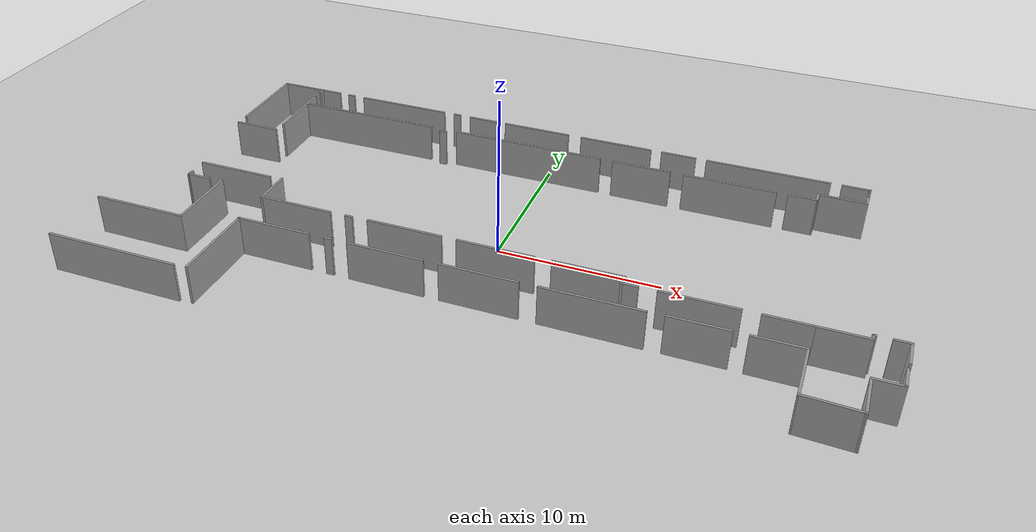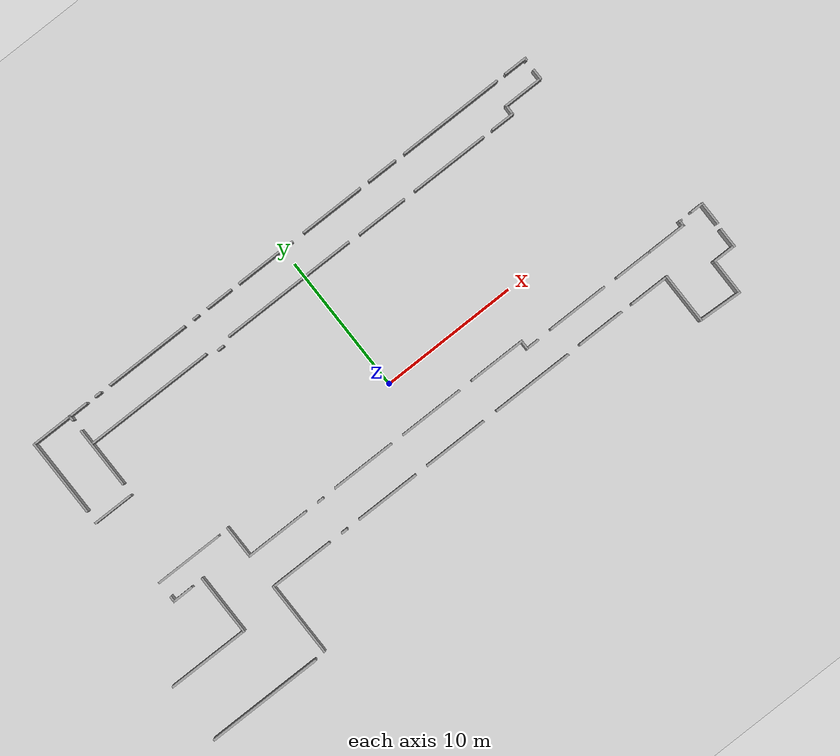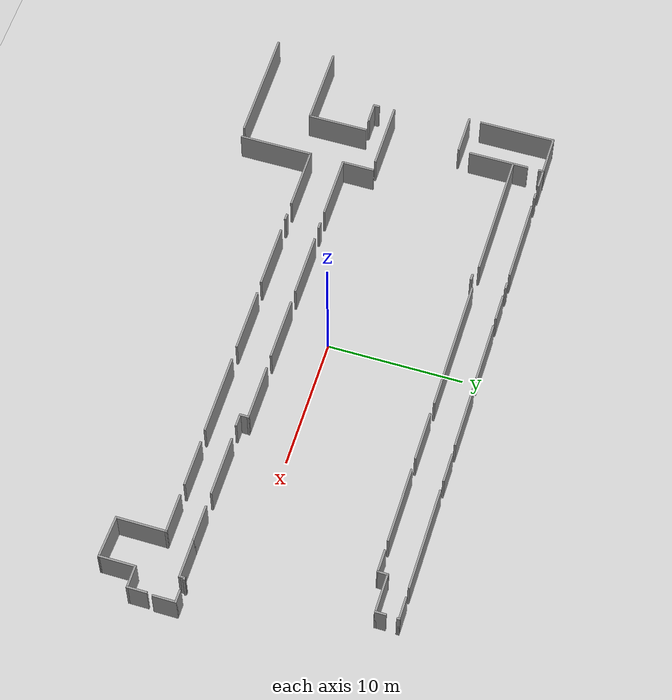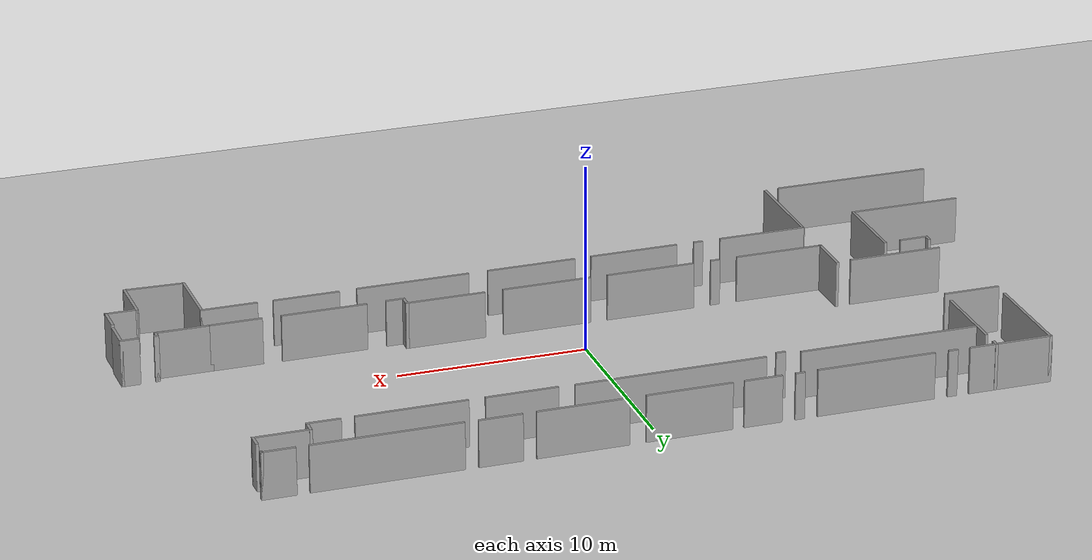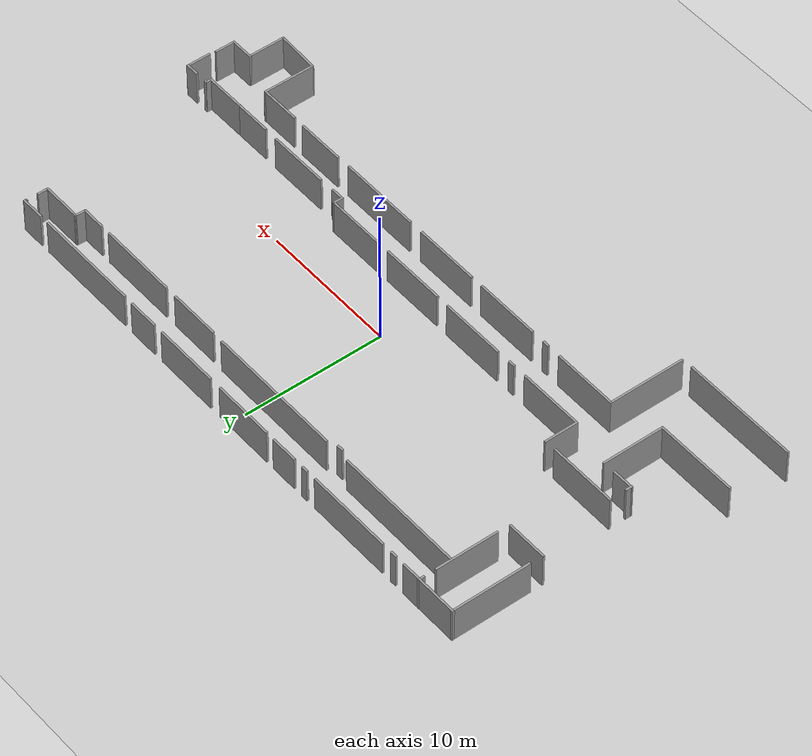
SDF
<sdf version='1.7'>
  <world name='default'>
    <light name='sun' type='directional'>
      <cast_shadows>1</cast_shadows>
      <pose>0 0 10 0 -0 0</pose>
      <diffuse>0.8 0.8 0.8 1</diffuse>
      <specular>0.2 0.2 0.2 1</specular>
      <attenuation>
        <range>1000</range>
        <constant>0.9</constant>
        <linear>0.01</linear>
        <quadratic>0.001</quadratic>
      </attenuation>
      <direction>-0.5 0.1 -0.9</direction>
      <spot>
        <inner_angle>0</inner_angle>
        <outer_angle>0</outer_angle>
        <falloff>0</falloff>
      </spot>
    </light>
    <model name='ground_plane'>
      <static>1</static>
      <link name='link'>
        <collision name='collision'>
          <geometry>
            <plane>
              <normal>0 0 1</normal>
              <size>100 100</size>
            </plane>
          </geometry>
          <surface>
            <friction>
              <ode>
                <mu>100</mu>
                <mu2>50</mu2>
              </ode>
              <torsional>
                <ode/>
              </torsional>
            </friction>
            <contact>
              <ode/>
            </contact>
            <bounce/>
          </surface>
          <max_contacts>10</max_contacts>
        </collision>
        <visual name='visual'>
          <cast_shadows>0</cast_shadows>
          <geometry>
            <plane>
              <normal>0 0 1</normal>
              <size>100 100</size>
            </plane>
          </geometry>
          <material>
            <script>
              <uri>file://media/materials/scripts/gazebo.material</uri>
              <name>Gazebo/Grey</name>
            </script>
          </material>
        </visual>
        <self_collide>0</self_collide>
        <enable_wind>0</enable_wind>
        <kinematic>0</kinematic>
      </link>
    </model>
    <gravity>0 0 -9.8</gravity>
    <magnetic_field>6e-06 2.3e-05 -4.2e-05</magnetic_field>
    <atmosphere type='adiabatic'/>
    <physics type='ode'>
      <max_step_size>0.001</max_step_size>
      <real_time_factor>1</real_time_factor>
      <real_time_update_rate>1000</real_time_update_rate>
    </physics>
    <scene>
      <ambient>0.4 0.4 0.4 1</ambient>
      <background>0.7 0.7 0.7 1</background>
      <shadows>1</shadows>
    </scene>
    <audio>
      <device>default</device>
    </audio>
    <wind/>
    <spherical_coordinates>
      <surface_model>EARTH_WGS84</surface_model>
      <latitude_deg>0</latitude_deg>
      <longitude_deg>0</longitude_deg>
      <elevation>0</elevation>
      <heading_deg>0</heading_deg>
    </spherical_coordinates>

    <include>
      <name>mundo_definitivo</name>
      <uri>model://mundo_Definitivo</uri>
      <pose>0 0 0 0 0 0</pose>
    </include>

    <gui fullscreen='0'>
      <camera name='user_camera'>
        <pose>0 -34 38 0 0.8 1.5708</pose>
        <view_controller>orbit</view_controller>
        <projection_type>perspective</projection_type>
      </camera>
    </gui>
  </world>
</sdf>

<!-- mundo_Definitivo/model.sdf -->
<sdf version='1.7'>
  <model name='mapaV2'>
    <pose>0.752962 -0.165006 0 0 -0 0</pose>
    <link name='Wall_100'>
      <collision name='Wall_100_Collision'>
        <geometry>
          <box>
            <size>0.5 0.15 2.5</size>
          </box>
        </geometry>
        <pose>0 0 1.25 0 -0 0</pose>
      </collision>
      <visual name='Wall_100_Visual'>
        <pose>0 0 1.25 0 -0 0</pose>
        <geometry>
          <box>
            <size>0.5 0.15 2.5</size>
          </box>
        </geometry>
        <material>
          <script>
            <uri>file://media/materials/scripts/gazebo.material</uri>
            <name>Gazebo/Grey</name>
          </script>
          <ambient>1 1 1 1</ambient>
        </material>
        <meta>
          <layer>0</layer>
        </meta>
      </visual>
      <pose>-8.23448 -5.77581 0 0 -0 0</pose>
    </link>
    <link name='Wall_102'>
      <collision name='Wall_102_Collision'>
        <geometry>
          <box>
            <size>4.75 0.15 2.5</size>
          </box>
        </geometry>
        <pose>0 0 1.25 0 -0 0</pose>
      </collision>
      <visual name='Wall_102_Visual'>
        <pose>0 0 1.25 0 -0 0</pose>
        <geometry>
          <box>
            <size>4.75 0.15 2.5</size>
          </box>
        </geometry>
        <material>
          <script>
            <uri>file://media/materials/scripts/gazebo.material</uri>
            <name>Gazebo/Grey</name>
          </script>
          <ambient>1 1 1 1</ambient>
        </material>
        <meta>
          <layer>0</layer>
        </meta>
      </visual>
      <pose>-11.7864 -3.22073 0 0 -0 3.14159</pose>
    </link>
    <link name='Wall_104'>
      <collision name='Wall_104_Collision'>
        <geometry>
          <box>
            <size>2.46963 0.15 2.5</size>
          </box>
        </geometry>
        <pose>0 0 1.25 0 -0 0</pose>
      </collision>
      <visual name='Wall_104_Visual'>
        <pose>0 0 1.25 0 -0 0</pose>
        <geometry>
          <box>
            <size>2.46963 0.15 2.5</size>
          </box>
        </geometry>
        <material>
          <script>
            <uri>file://media/materials/scripts/gazebo.material</uri>
            <name>Gazebo/Grey</name>
          </script>
          <ambient>1 1 1 1</ambient>
        </material>
        <meta>
          <layer>0</layer>
        </meta>
      </visual>
      <pose>-14.1016 -2.06094 0 0 -0 1.5708</pose>
    </link>
    <link name='Wall_106'>
      <collision name='Wall_106_Collision'>
        <geometry>
          <box>
            <size>0.5 0.15 2.5</size>
          </box>
        </geometry>
        <pose>0 0 1.25 0 -0 0</pose>
      </collision>
      <visual name='Wall_106_Visual'>
        <pose>0 0 1.25 0 -0 0</pose>
        <geometry>
          <box>
            <size>0.5 0.15 2.5</size>
          </box>
        </geometry>
        <material>
          <script>
            <uri>file://media/materials/scripts/gazebo.material</uri>
            <name>Gazebo/Grey</name>
          </script>
          <ambient>1 1 1 1</ambient>
        </material>
        <meta>
          <layer>0</layer>
        </meta>
      </visual>
      <pose>-8.21947 -3.22073 0 0 -0 3.14159</pose>
    </link>
    <link name='Wall_108'>
      <collision name='Wall_108_Collision'>
        <geometry>
          <box>
            <size>4.75 0.15 2.5</size>
          </box>
        </geometry>
        <pose>0 0 1.25 0 -0 0</pose>
      </collision>
      <visual name='Wall_108_Visual'>
        <pose>0 0 1.25 0 -0 0</pose>
        <geometry>
          <box>
            <size>4.75 0.15 2.5</size>
          </box>
        </geometry>
        <material>
          <script>
            <uri>file://media/materials/scripts/gazebo.material</uri>
            <name>Gazebo/Grey</name>
          </script>
          <ambient>1 1 1 1</ambient>
        </material>
        <meta>
          <layer>0</layer>
        </meta>
      </visual>
      <pose>-4.64944 -3.19032 0 0 -0 0</pose>
    </link>
    <link name='Wall_110'>
      <collision name='Wall_110_Collision'>
        <geometry>
          <box>
            <size>4.75 0.15 2.5</size>
          </box>
        </geometry>
        <pose>0 0 1.25 0 -0 0</pose>
      </collision>
      <visual name='Wall_110_Visual'>
        <pose>0 0 1.25 0 -0 0</pose>
        <geometry>
          <box>
            <size>4.75 0.15 2.5</size>
          </box>
        </geometry>
        <material>
          <script>
            <uri>file://media/materials/scripts/gazebo.material</uri>
            <name>Gazebo/Grey</name>
          </script>
          <ambient>1 1 1 1</ambient>
        </material>
        <meta>
          <layer>0</layer>
        </meta>
      </visual>
      <pose>-4.66465 -5.77581 0 0 -0 0</pose>
    </link>
    <link name='Wall_112'>
      <collision name='Wall_112_Collision'>
        <geometry>
          <box>
            <size>4.75 0.15 2.5</size>
          </box>
        </geometry>
        <pose>0 0 1.25 0 -0 0</pose>
      </collision>
      <visual name='Wall_112_Visual'>
        <pose>0 0 1.25 0 -0 0</pose>
        <geometry>
          <box>
            <size>4.75 0.15 2.5</size>
          </box>
        </geometry>
        <material>
          <script>
            <uri>file://media/materials/scripts/gazebo.material</uri>
            <name>Gazebo/Grey</name>
          </script>
          <ambient>1 1 1 1</ambient>
        </material>
        <meta>
          <layer>0</layer>
        </meta>
      </visual>
      <pose>0.99301 -3.20553 0 0 -0 0</pose>
    </link>
    <link name='Wall_114'>
      <collision name='Wall_114_Collision'>
        <geometry>
          <box>
            <size>4.75 0.15 2.5</size>
          </box>
        </geometry>
        <pose>0 0 1.25 0 -0 0</pose>
      </collision>
      <visual name='Wall_114_Visual'>
        <pose>0 0 1.25 0 -0 0</pose>
        <geometry>
          <box>
            <size>4.75 0.15 2.5</size>
          </box>
        </geometry>
        <material>
          <script>
            <uri>file://media/materials/scripts/gazebo.material</uri>
            <name>Gazebo/Grey</name>
          </script>
          <ambient>1 1 1 1</ambient>
        </material>
        <meta>
          <layer>0</layer>
        </meta>
      </visual>
      <pose>0.977802 -5.7606 0 0 -0 0</pose>
    </link>
    <link name='Wall_116'>
      <collision name='Wall_116_Collision'>
        <geometry>
          <box>
            <size>4.25 0.15 2.5</size>
          </box>
        </geometry>
        <pose>0 0 1.25 0 -0 0</pose>
      </collision>
      <visual name='Wall_116_Visual'>
        <pose>0 0 1.25 0 -0 0</pose>
        <geometry>
          <box>
            <size>4.25 0.15 2.5</size>
          </box>
        </geometry>
        <material>
          <script>
            <uri>file://media/materials/scripts/gazebo.material</uri>
            <name>Gazebo/Grey</name>
          </script>
          <ambient>1 1 1 1</ambient>
        </material>
        <meta>
          <layer>0</layer>
        </meta>
      </visual>
      <pose>6.4615 -3.19032 0 0 -0 0</pose>
    </link>
    <link name='Wall_117'>
      <collision name='Wall_117_Collision'>
        <geometry>
          <box>
            <size>0.750193 0.15 2.5</size>
          </box>
        </geometry>
        <pose>0 0 1.25 0 -0 0</pose>
      </collision>
      <visual name='Wall_117_Visual'>
        <pose>0 0 1.25 0 -0 0</pose>
        <geometry>
          <box>
            <size>0.750193 0.15 2.5</size>
          </box>
        </geometry>
        <material>
          <script>
            <uri>file://media/materials/scripts/gazebo.material</uri>
            <name>Gazebo/Grey</name>
          </script>
          <ambient>1 1 1 1</ambient>
        </material>
        <meta>
          <layer>0</layer>
        </meta>
      </visual>
      <pose>8.49629 -3.49032 0 0 -0 -1.5708</pose>
    </link>
    <link name='Wall_118'>
      <collision name='Wall_118_Collision'>
        <geometry>
          <box>
            <size>1 0.15 2.5</size>
          </box>
        </geometry>
        <pose>0 0 1.25 0 -0 0</pose>
      </collision>
      <visual name='Wall_118_Visual'>
        <pose>0 0 1.25 0 -0 0</pose>
        <geometry>
          <box>
            <size>1 0.15 2.5</size>
          </box>
        </geometry>
        <material>
          <script>
            <uri>file://media/materials/scripts/gazebo.material</uri>
            <name>Gazebo/Grey</name>
          </script>
          <ambient>1 1 1 1</ambient>
        </material>
        <meta>
          <layer>0</layer>
        </meta>
      </visual>
      <pose>8.9365 -3.79032 0 0 -0 0</pose>
    </link>
    <link name='Wall_120'>
      <collision name='Wall_120_Collision'>
        <geometry>
          <box>
            <size>4.5 0.15 2.5</size>
          </box>
        </geometry>
        <pose>0 0 1.25 0 -0 0</pose>
      </collision>
      <visual name='Wall_120_Visual'>
        <pose>0 0 1.25 0 -0 0</pose>
        <geometry>
          <box>
            <size>4.5 0.15 2.5</size>
          </box>
        </geometry>
        <material>
          <script>
            <uri>file://media/materials/scripts/gazebo.material</uri>
            <name>Gazebo/Grey</name>
          </script>
          <ambient>1 1 1 1</ambient>
        </material>
        <meta>
          <layer>0</layer>
        </meta>
      </visual>
      <pose>12.7004 -3.75304 0 0 -0 0</pose>
    </link>
    <link name='Wall_124'>
      <collision name='Wall_124_Collision'>
        <geometry>
          <box>
            <size>3 0.15 2.5</size>
          </box>
        </geometry>
        <pose>0 0 1.25 0 -0 0</pose>
      </collision>
      <visual name='Wall_124_Visual'>
        <pose>0 0 1.25 0 -0 0</pose>
        <geometry>
          <box>
            <size>3 0.15 2.5</size>
          </box>
        </geometry>
        <material>
          <script>
            <uri>file://media/materials/scripts/gazebo.material</uri>
            <name>Gazebo/Grey</name>
          </script>
          <ambient>1 1 1 1</ambient>
        </material>
        <meta>
          <layer>0</layer>
        </meta>
      </visual>
      <pose>17.1388 -5.74539 0 0 -0 3.14159</pose>
    </link>
    <link name='Wall_126'>
      <collision name='Wall_126_Collision'>
        <geometry>
          <box>
            <size>3.5 0.15 2.5</size>
          </box>
        </geometry>
        <pose>0 0 1.25 0 -0 0</pose>
      </collision>
      <visual name='Wall_126_Visual'>
        <pose>0 0 1.25 0 -0 0</pose>
        <geometry>
          <box>
            <size>3.5 0.15 2.5</size>
          </box>
        </geometry>
        <material>
          <script>
            <uri>file://media/materials/scripts/gazebo.material</uri>
            <name>Gazebo/Grey</name>
          </script>
          <ambient>1 1 1 1</ambient>
        </material>
        <meta>
          <layer>0</layer>
        </meta>
      </visual>
      <pose>13.0768 -5.72041 0 0 -0 0</pose>
    </link>
    <link name='Wall_128'>
      <collision name='Wall_128_Collision'>
        <geometry>
          <box>
            <size>6 0.15 2.5</size>
          </box>
        </geometry>
        <pose>0 0 1.25 0 -0 0</pose>
      </collision>
      <visual name='Wall_128_Visual'>
        <pose>0 0 1.25 0 -0 0</pose>
        <geometry>
          <box>
            <size>6 0.15 2.5</size>
          </box>
        </geometry>
        <material>
          <script>
            <uri>file://media/materials/scripts/gazebo.material</uri>
            <name>Gazebo/Grey</name>
          </script>
          <ambient>1 1 1 1</ambient>
        </material>
        <meta>
          <layer>0</layer>
        </meta>
      </visual>
      <pose>7.38832 -5.75453 0 0 -0 0</pose>
    </link>
    <link name='Wall_130'>
      <collision name='Wall_130_Collision'>
        <geometry>
          <box>
            <size>3.75 0.15 2.5</size>
          </box>
        </geometry>
        <pose>0 0 1.25 0 -0 0</pose>
      </collision>
      <visual name='Wall_130_Visual'>
        <pose>0 0 1.25 0 -0 0</pose>
        <geometry>
          <box>
            <size>3.75 0.15 2.5</size>
          </box>
        </geometry>
        <material>
          <script>
            <uri>file://media/materials/scripts/gazebo.material</uri>
            <name>Gazebo/Grey</name>
          </script>
          <ambient>1 1 1 1</ambient>
        </material>
        <meta>
          <layer>0</layer>
        </meta>
      </visual>
      <pose>18.5523 -7.54539 0 0 -0 -1.5708</pose>
    </link>
    <link name='Wall_136'>
      <collision name='Wall_136_Collision'>
        <geometry>
          <box>
            <size>2.75 0.15 2.5</size>
          </box>
        </geometry>
        <pose>0 0 1.25 0 -0 0</pose>
      </collision>
      <visual name='Wall_136_Visual'>
        <pose>0 0 1.25 0 -0 0</pose>
        <geometry>
          <box>
            <size>2.75 0.15 2.5</size>
          </box>
        </geometry>
        <material>
          <script>
            <uri>file://media/materials/scripts/gazebo.material</uri>
            <name>Gazebo/Grey</name>
          </script>
          <ambient>1 1 1 1</ambient>
        </material>
        <meta>
          <layer>0</layer>
        </meta>
      </visual>
      <pose>17.3064 -3.77961 0 0 -0 0</pose>
    </link>
    <link name='Wall_138'>
      <collision name='Wall_138_Collision'>
        <geometry>
          <box>
            <size>3 0.15 2.5</size>
          </box>
        </geometry>
        <pose>0 0 1.25 0 -0 0</pose>
      </collision>
      <visual name='Wall_138_Visual'>
        <pose>0 0 1.25 0 -0 0</pose>
        <geometry>
          <box>
            <size>3 0.15 2.5</size>
          </box>
        </geometry>
        <material>
          <script>
            <uri>file://media/materials/scripts/gazebo.material</uri>
            <name>Gazebo/Grey</name>
          </script>
          <ambient>1 1 1 1</ambient>
        </material>
        <meta>
          <layer>0</layer>
        </meta>
      </visual>
      <pose>20.0314 -3.77961 0 0 -0 0</pose>
    </link>
    <link name='Wall_139'>
      <collision name='Wall_139_Collision'>
        <geometry>
          <box>
            <size>0.5 0.15 2.5</size>
          </box>
        </geometry>
        <pose>0 0 1.25 0 -0 0</pose>
      </collision>
      <visual name='Wall_139_Visual'>
        <pose>0 0 1.25 0 -0 0</pose>
        <geometry>
          <box>
            <size>0.5 0.15 2.5</size>
          </box>
        </geometry>
        <material>
          <script>
            <uri>file://media/materials/scripts/gazebo.material</uri>
            <name>Gazebo/Grey</name>
          </script>
          <ambient>1 1 1 1</ambient>
        </material>
        <meta>
          <layer>0</layer>
        </meta>
      </visual>
      <pose>21.4564 -3.60461 0 0 -0 1.5708</pose>
    </link>
    <link name='Wall_140'>
      <collision name='Wall_140_Collision'>
        <geometry>
          <box>
            <size>0.25 0.15 2.5</size>
          </box>
        </geometry>
        <pose>0 0 1.25 0 -0 0</pose>
      </collision>
      <visual name='Wall_140_Visual'>
        <pose>0 0 1.25 0 -0 0</pose>
        <geometry>
          <box>
            <size>0.25 0.15 2.5</size>
          </box>
        </geometry>
        <material>
          <script>
            <uri>file://media/materials/scripts/gazebo.material</uri>
            <name>Gazebo/Grey</name>
          </script>
          <ambient>1 1 1 1</ambient>
        </material>
        <meta>
          <layer>0</layer>
        </meta>
      </visual>
      <pose>21.5064 -3.42961 0 0 -0 0</pose>
    </link>
    <link name='Wall_147'>
      <collision name='Wall_147_Collision'>
        <geometry>
          <box>
            <size>1 0.15 2.5</size>
          </box>
        </geometry>
        <pose>0 0 1.25 0 -0 0</pose>
      </collision>
      <visual name='Wall_147_Visual'>
        <pose>0 0 1.25 0 -0 0</pose>
        <geometry>
          <box>
            <size>1 0.15 2.5</size>
          </box>
        </geometry>
        <material>
          <script>
            <uri>file://media/materials/scripts/gazebo.material</uri>
            <name>Gazebo/Grey</name>
          </script>
          <ambient>1 1 1 1</ambient>
        </material>
        <meta>
          <layer>0</layer>
        </meta>
      </visual>
      <pose>22.8895 -3.41702 0 0 -0 0</pose>
    </link>
    <link name='Wall_149'>
      <collision name='Wall_149_Collision'>
        <geometry>
          <box>
            <size>1.75 0.15 2.5</size>
          </box>
        </geometry>
        <pose>0 0 1.25 0 -0 0</pose>
      </collision>
      <visual name='Wall_149_Visual'>
        <pose>0 0 1.25 0 -0 0</pose>
        <geometry>
          <box>
            <size>1.75 0.15 2.5</size>
          </box>
        </geometry>
        <material>
          <script>
            <uri>file://media/materials/scripts/gazebo.material</uri>
            <name>Gazebo/Grey</name>
          </script>
          <ambient>1 1 1 1</ambient>
        </material>
        <meta>
          <layer>0</layer>
        </meta>
      </visual>
      <pose>23.3145 -4.21702 0 0 -0 -1.5708</pose>
    </link>
    <link name='Wall_151'>
      <collision name='Wall_151_Collision'>
        <geometry>
          <box>
            <size>1.5 0.15 2.5</size>
          </box>
        </geometry>
        <pose>0 0 1.25 0 -0 0</pose>
      </collision>
      <visual name='Wall_151_Visual'>
        <pose>0 0 1.25 0 -0 0</pose>
        <geometry>
          <box>
            <size>1.5 0.15 2.5</size>
          </box>
        </geometry>
        <material>
          <script>
            <uri>file://media/materials/scripts/gazebo.material</uri>
            <name>Gazebo/Grey</name>
          </script>
          <ambient>1 1 1 1</ambient>
        </material>
        <meta>
          <layer>0</layer>
        </meta>
      </visual>
      <pose>23.2317 -6.20321 0 0 -0 -1.5708</pose>
    </link>
    <link name='Wall_152'>
      <collision name='Wall_152_Collision'>
        <geometry>
          <box>
            <size>1.75 0.15 2.5</size>
          </box>
        </geometry>
        <pose>0 0 1.25 0 -0 0</pose>
      </collision>
      <visual name='Wall_152_Visual'>
        <pose>0 0 1.25 0 -0 0</pose>
        <geometry>
          <box>
            <size>1.75 0.15 2.5</size>
          </box>
        </geometry>
        <material>
          <script>
            <uri>file://media/materials/scripts/gazebo.material</uri>
            <name>Gazebo/Grey</name>
          </script>
          <ambient>1 1 1 1</ambient>
        </material>
        <meta>
          <layer>0</layer>
        </meta>
      </visual>
      <pose>22.4317 -6.87821 0 0 -0 3.14159</pose>
    </link>
    <link name='Wall_153'>
      <collision name='Wall_153_Collision'>
        <geometry>
          <box>
            <size>2.75 0.15 2.5</size>
          </box>
        </geometry>
        <pose>0 0 1.25 0 -0 0</pose>
      </collision>
      <visual name='Wall_153_Visual'>
        <pose>0 0 1.25 0 -0 0</pose>
        <geometry>
          <box>
            <size>2.75 0.15 2.5</size>
          </box>
        </geometry>
        <material>
          <script>
            <uri>file://media/materials/scripts/gazebo.material</uri>
            <name>Gazebo/Grey</name>
          </script>
          <ambient>1 1 1 1</ambient>
        </material>
        <meta>
          <layer>0</layer>
        </meta>
      </visual>
      <pose>21.6317 -8.17821 0 0 -0 -1.5708</pose>
    </link>
    <link name='Wall_154'>
      <collision name='Wall_154_Collision'>
        <geometry>
          <box>
            <size>3.23226 0.15 2.5</size>
          </box>
        </geometry>
        <pose>0 0 1.25 0 -0 0</pose>
      </collision>
      <visual name='Wall_154_Visual'>
        <pose>0 0 1.25 0 -0 0</pose>
        <geometry>
          <box>
            <size>3.23226 0.15 2.5</size>
          </box>
        </geometry>
        <material>
          <script>
            <uri>file://media/materials/scripts/gazebo.material</uri>
            <name>Gazebo/Grey</name>
          </script>
          <ambient>1 1 1 1</ambient>
        </material>
        <meta>
          <layer>0</layer>
        </meta>
      </visual>
      <pose>20.092 -9.4118 0 0 -0 3.09849</pose>
    </link>
    <link name='Wall_16'>
      <collision name='Wall_16_Collision'>
        <geometry>
          <box>
            <size>5.68966 0.15 2.5</size>
          </box>
        </geometry>
        <pose>0 0 1.25 0 -0 0</pose>
      </collision>
      <visual name='Wall_16_Visual'>
        <pose>0 0 1.25 0 -0 0</pose>
        <geometry>
          <box>
            <size>5.68966 0.15 2.5</size>
          </box>
        </geometry>
        <material>
          <script>
            <uri>file://media/materials/scripts/gazebo.material</uri>
            <name>Gazebo/Grey</name>
          </script>
          <ambient>1 1 1 1</ambient>
        </material>
        <meta>
          <layer>0</layer>
        </meta>
      </visual>
      <pose>-20.6294 8.43018 0 0 -0 -1.5708</pose>
    </link>
    <link name='Wall_18'>
      <collision name='Wall_18_Collision'>
        <geometry>
          <box>
            <size>4.5 0.15 2.5</size>
          </box>
        </geometry>
        <pose>0 0 1.25 0 -0 0</pose>
      </collision>
      <visual name='Wall_18_Visual'>
        <pose>0 0 1.25 0 -0 0</pose>
        <geometry>
          <box>
            <size>4.5 0.15 2.5</size>
          </box>
        </geometry>
        <material>
          <script>
            <uri>file://media/materials/scripts/gazebo.material</uri>
            <name>Gazebo/Grey</name>
          </script>
          <ambient>1 1 1 1</ambient>
        </material>
        <meta>
          <layer>0</layer>
        </meta>
      </visual>
      <pose>-17.6889 7.78714 0 0 -0 -1.5708</pose>
    </link>
    <link name='Wall_20'>
      <collision name='Wall_20_Collision'>
        <geometry>
          <box>
            <size>3 0.15 2.5</size>
          </box>
        </geometry>
        <pose>0 0 1.25 0 -0 0</pose>
      </collision>
      <visual name='Wall_20_Visual'>
        <pose>0 0 1.25 0 -0 0</pose>
        <geometry>
          <box>
            <size>3 0.15 2.5</size>
          </box>
        </geometry>
        <material>
          <script>
            <uri>file://media/materials/scripts/gazebo.material</uri>
            <name>Gazebo/Grey</name>
          </script>
          <ambient>1 1 1 1</ambient>
        </material>
        <meta>
          <layer>0</layer>
        </meta>
      </visual>
      <pose>-19.2206 4.69238 0 0 -0 0</pose>
    </link>
    <link name='Wall_24'>
      <collision name='Wall_24_Collision'>
        <geometry>
          <box>
            <size>0.459773 0.15 2.5</size>
          </box>
        </geometry>
        <pose>0 0 1.25 0 -0 0</pose>
      </collision>
      <visual name='Wall_24_Visual'>
        <pose>0 0 1.25 0 -0 0</pose>
        <geometry>
          <box>
            <size>0.459773 0.15 2.5</size>
          </box>
        </geometry>
        <material>
          <script>
            <uri>file://media/materials/scripts/gazebo.material</uri>
            <name>Gazebo/Grey</name>
          </script>
          <ambient>1 1 1 1</ambient>
        </material>
        <meta>
          <layer>0</layer>
        </meta>
      </visual>
      <pose>-17.6875 11.0652 0 0 -0 -1.5708</pose>
    </link>
    <link name='Wall_26'>
      <collision name='Wall_26_Collision'>
        <geometry>
          <box>
            <size>3.11204 0.15 2.5</size>
          </box>
        </geometry>
        <pose>0 0 1.25 0 -0 0</pose>
      </collision>
      <visual name='Wall_26_Visual'>
        <pose>0 0 1.25 0 -0 0</pose>
        <geometry>
          <box>
            <size>3.11204 0.15 2.5</size>
          </box>
        </geometry>
        <material>
          <script>
            <uri>file://media/materials/scripts/gazebo.material</uri>
            <name>Gazebo/Grey</name>
          </script>
          <ambient>1 1 1 1</ambient>
        </material>
        <meta>
          <layer>0</layer>
        </meta>
      </visual>
      <pose>-19.1685 11.2 0 0 -0 0</pose>
    </link>
    <link name='Wall_29'>
      <collision name='Wall_29_Collision'>
        <geometry>
          <box>
            <size>1.5 0.15 2.5</size>
          </box>
        </geometry>
        <pose>0 0 1.25 0 -0 0</pose>
      </collision>
      <visual name='Wall_29_Visual'>
        <pose>0 0 1.25 0 -0 0</pose>
        <geometry>
          <box>
            <size>1.5 0.15 2.5</size>
          </box>
        </geometry>
        <material>
          <script>
            <uri>file://media/materials/scripts/gazebo.material</uri>
            <name>Gazebo/Grey</name>
          </script>
          <ambient>1 1 1 1</ambient>
        </material>
        <meta>
          <layer>0</layer>
        </meta>
      </visual>
      <pose>-17.0125 11.2 0 0 -0 0</pose>
    </link>
    <link name='Wall_31'>
      <collision name='Wall_31_Collision'>
        <geometry>
          <box>
            <size>0.5 0.15 2.5</size>
          </box>
        </geometry>
        <pose>0 0 1.25 0 -0 0</pose>
      </collision>
      <visual name='Wall_31_Visual'>
        <pose>0 0 1.25 0 -0 0</pose>
        <geometry>
          <box>
            <size>0.5 0.15 2.5</size>
          </box>
        </geometry>
        <material>
          <script>
            <uri>file://media/materials/scripts/gazebo.material</uri>
            <name>Gazebo/Grey</name>
          </script>
          <ambient>1 1 1 1</ambient>
        </material>
        <meta>
          <layer>0</layer>
        </meta>
      </visual>
      <pose>-15.3618 11.1888 0 0 -0 0</pose>
    </link>
    <link name='Wall_33'>
      <collision name='Wall_33_Collision'>
        <geometry>
          <box>
            <size>6.25 0.15 2.5</size>
          </box>
        </geometry>
        <pose>0 0 1.25 0 -0 0</pose>
      </collision>
      <visual name='Wall_33_Visual'>
        <pose>0 0 1.25 0 -0 0</pose>
        <geometry>
          <box>
            <size>6.25 0.15 2.5</size>
          </box>
        </geometry>
        <material>
          <script>
            <uri>file://media/materials/scripts/gazebo.material</uri>
            <name>Gazebo/Grey</name>
          </script>
          <ambient>1 1 1 1</ambient>
        </material>
        <meta>
          <layer>0</layer>
        </meta>
      </visual>
      <pose>-11.275 11.1839 0 0 -0 0</pose>
    </link>
    <link name='Wall_35'>
      <collision name='Wall_35_Collision'>
        <geometry>
          <box>
            <size>0.5 0.15 2.5</size>
          </box>
        </geometry>
        <pose>0 0 1.25 0 -0 0</pose>
      </collision>
      <visual name='Wall_35_Visual'>
        <pose>0 0 1.25 0 -0 0</pose>
        <geometry>
          <box>
            <size>0.5 0.15 2.5</size>
          </box>
        </geometry>
        <material>
          <script>
            <uri>file://media/materials/scripts/gazebo.material</uri>
            <name>Gazebo/Grey</name>
          </script>
          <ambient>1 1 1 1</ambient>
        </material>
        <meta>
          <layer>0</layer>
        </meta>
      </visual>
      <pose>-7.21577 11.1936 0 0 -0 0</pose>
    </link>
    <link name='Wall_37'>
      <collision name='Wall_37_Collision'>
        <geometry>
          <box>
            <size>2 0.15 2.5</size>
          </box>
        </geometry>
        <pose>0 0 1.25 0 -0 0</pose>
      </collision>
      <visual name='Wall_37_Visual'>
        <pose>0 0 1.25 0 -0 0</pose>
        <geometry>
          <box>
            <size>2 0.15 2.5</size>
          </box>
        </geometry>
        <material>
          <script>
            <uri>file://media/materials/scripts/gazebo.material</uri>
            <name>Gazebo/Grey</name>
          </script>
          <ambient>1 1 1 1</ambient>
        </material>
        <meta>
          <layer>0</layer>
        </meta>
      </visual>
      <pose>-5.28271 11.1912 0 0 -0 0</pose>
    </link>
    <link name='Wall_39'>
      <collision name='Wall_39_Collision'>
        <geometry>
          <box>
            <size>4.5 0.15 2.5</size>
          </box>
        </geometry>
        <pose>0 0 1.25 0 -0 0</pose>
      </collision>
      <visual name='Wall_39_Visual'>
        <pose>0 0 1.25 0 -0 0</pose>
        <geometry>
          <box>
            <size>4.5 0.15 2.5</size>
          </box>
        </geometry>
        <material>
          <script>
            <uri>file://media/materials/scripts/gazebo.material</uri>
            <name>Gazebo/Grey</name>
          </script>
          <ambient>1 1 1 1</ambient>
        </material>
        <meta>
          <layer>0</layer>
        </meta>
      </visual>
      <pose>-1.43745 11.1862 0 0 -0 0</pose>
    </link>
    <link name='Wall_41'>
      <collision name='Wall_41_Collision'>
        <geometry>
          <box>
            <size>4.75 0.15 2.5</size>
          </box>
        </geometry>
        <pose>0 0 1.25 0 -0 0</pose>
      </collision>
      <visual name='Wall_41_Visual'>
        <pose>0 0 1.25 0 -0 0</pose>
        <geometry>
          <box>
            <size>4.75 0.15 2.5</size>
          </box>
        </geometry>
        <material>
          <script>
            <uri>file://media/materials/scripts/gazebo.material</uri>
            <name>Gazebo/Grey</name>
          </script>
          <ambient>1 1 1 1</ambient>
        </material>
        <meta>
          <layer>0</layer>
        </meta>
      </visual>
      <pose>4.05209 11.1862 0 0 -0 0</pose>
    </link>
    <link name='Wall_43'>
      <collision name='Wall_43_Collision'>
        <geometry>
          <box>
            <size>2.25 0.15 2.5</size>
          </box>
        </geometry>
        <pose>0 0 1.25 0 -0 0</pose>
      </collision>
      <visual name='Wall_43_Visual'>
        <pose>0 0 1.25 0 -0 0</pose>
        <geometry>
          <box>
            <size>2.25 0.15 2.5</size>
          </box>
        </geometry>
        <material>
          <script>
            <uri>file://media/materials/scripts/gazebo.material</uri>
            <name>Gazebo/Grey</name>
          </script>
          <ambient>1 1 1 1</ambient>
        </material>
        <meta>
          <layer>0</layer>
        </meta>
      </visual>
      <pose>8.2412 11.1912 0 0 -0 0</pose>
    </link>
    <link name='Wall_45'>
      <collision name='Wall_45_Collision'>
        <geometry>
          <box>
            <size>7.75 0.15 2.5</size>
          </box>
        </geometry>
        <pose>0 0 1.25 0 -0 0</pose>
      </collision>
      <visual name='Wall_45_Visual'>
        <pose>0 0 1.25 0 -0 0</pose>
        <geometry>
          <box>
            <size>7.75 0.15 2.5</size>
          </box>
        </geometry>
        <material>
          <script>
            <uri>file://media/materials/scripts/gazebo.material</uri>
            <name>Gazebo/Grey</name>
          </script>
          <ambient>1 1 1 1</ambient>
        </material>
        <meta>
          <layer>0</layer>
        </meta>
      </visual>
      <pose>13.9171 11.1713 0 0 -0 0</pose>
    </link>
    <link name='Wall_47'>
      <collision name='Wall_47_Collision'>
        <geometry>
          <box>
            <size>1.75 0.15 2.5</size>
          </box>
        </geometry>
        <pose>0 0 1.25 0 -0 0</pose>
      </collision>
      <visual name='Wall_47_Visual'>
        <pose>0 0 1.25 0 -0 0</pose>
        <geometry>
          <box>
            <size>1.75 0.15 2.5</size>
          </box>
        </geometry>
        <material>
          <script>
            <uri>file://media/materials/scripts/gazebo.material</uri>
            <name>Gazebo/Grey</name>
          </script>
          <ambient>1 1 1 1</ambient>
        </material>
        <meta>
          <layer>0</layer>
        </meta>
      </visual>
      <pose>19.3098 11.1778 0 0 -0 0</pose>
    </link>
    <link name='Wall_48'>
      <collision name='Wall_48_Collision'>
        <geometry>
          <box>
            <size>0.25 0.15 2.5</size>
          </box>
        </geometry>
        <pose>0 0 1.25 0 -0 0</pose>
      </collision>
      <visual name='Wall_48_Visual'>
        <pose>0 0 1.25 0 -0 0</pose>
        <geometry>
          <box>
            <size>0.25 0.15 2.5</size>
          </box>
        </geometry>
        <material>
          <script>
            <uri>file://media/materials/scripts/gazebo.material</uri>
            <name>Gazebo/Grey</name>
          </script>
          <ambient>1 1 1 1</ambient>
        </material>
        <meta>
          <layer>0</layer>
        </meta>
      </visual>
      <pose>20.1098 11.1278 0 0 -0 -1.5708</pose>
    </link>
    <link name='Wall_59'>
      <collision name='Wall_59_Collision'>
        <geometry>
          <box>
            <size>0.828261 0.15 2.5</size>
          </box>
        </geometry>
        <pose>0 0 1.25 0 -0 0</pose>
      </collision>
      <visual name='Wall_59_Visual'>
        <pose>0 0 1.25 0 -0 0</pose>
        <geometry>
          <box>
            <size>0.828261 0.15 2.5</size>
          </box>
        </geometry>
        <material>
          <script>
            <uri>file://media/materials/scripts/gazebo.material</uri>
            <name>Gazebo/Grey</name>
          </script>
          <ambient>1 1 1 1</ambient>
        </material>
        <meta>
          <layer>0</layer>
        </meta>
      </visual>
      <pose>20.075 9.86476 0 0 -0 -1.5708</pose>
    </link>
    <link name='Wall_65'>
      <collision name='Wall_65_Collision'>
        <geometry>
          <box>
            <size>1.76748 0.15 2.5</size>
          </box>
        </geometry>
        <pose>0 0 1.25 0 -0 0</pose>
      </collision>
      <visual name='Wall_65_Visual'>
        <pose>0 0 1.25 0 -0 0</pose>
        <geometry>
          <box>
            <size>1.76748 0.15 2.5</size>
          </box>
        </geometry>
        <material>
          <script>
            <uri>file://media/materials/scripts/gazebo.material</uri>
            <name>Gazebo/Grey</name>
          </script>
          <ambient>1 1 1 1</ambient>
        </material>
        <meta>
          <layer>0</layer>
        </meta>
      </visual>
      <pose>16.3989 8.83432 0 0 -0 3.13622</pose>
    </link>
    <link name='Wall_68'>
      <collision name='Wall_68_Collision'>
        <geometry>
          <box>
            <size>3 0.15 2.5</size>
          </box>
        </geometry>
        <pose>0 0 1.25 0 -0 0</pose>
      </collision>
      <visual name='Wall_68_Visual'>
        <pose>0 0 1.25 0 -0 0</pose>
        <geometry>
          <box>
            <size>3 0.15 2.5</size>
          </box>
        </geometry>
        <material>
          <script>
            <uri>file://media/materials/scripts/gazebo.material</uri>
            <name>Gazebo/Grey</name>
          </script>
          <ambient>1 1 1 1</ambient>
        </material>
        <meta>
          <layer>0</layer>
        </meta>
      </visual>
      <pose>18.65 9.51693 0 0 -0 3.14159</pose>
    </link>
    <link name='Wall_69'>
      <collision name='Wall_69_Collision'>
        <geometry>
          <box>
            <size>0.84587 0.15 2.5</size>
          </box>
        </geometry>
        <pose>0 0 1.25 0 -0 0</pose>
      </collision>
      <visual name='Wall_69_Visual'>
        <pose>0 0 1.25 0 -0 0</pose>
        <geometry>
          <box>
            <size>0.84587 0.15 2.5</size>
          </box>
        </geometry>
        <material>
          <script>
            <uri>file://media/materials/scripts/gazebo.material</uri>
            <name>Gazebo/Grey</name>
          </script>
          <ambient>1 1 1 1</ambient>
        </material>
        <meta>
          <layer>0</layer>
        </meta>
      </visual>
      <pose>17.2163 9.1778 0 0 -0 -1.59579</pose>
    </link>
    <link name='Wall_71'>
      <collision name='Wall_71_Collision'>
        <geometry>
          <box>
            <size>5.75 0.15 2.5</size>
          </box>
        </geometry>
        <pose>0 0 1.25 0 -0 0</pose>
      </collision>
      <visual name='Wall_71_Visual'>
        <pose>0 0 1.25 0 -0 0</pose>
        <geometry>
          <box>
            <size>5.75 0.15 2.5</size>
          </box>
        </geometry>
        <material>
          <script>
            <uri>file://media/materials/scripts/gazebo.material</uri>
            <name>Gazebo/Grey</name>
          </script>
          <ambient>1 1 1 1</ambient>
        </material>
        <meta>
          <layer>0</layer>
        </meta>
      </visual>
      <pose>11.9619 8.83867 0 0 -0 3.14159</pose>
    </link>
    <link name='Wall_73'>
      <collision name='Wall_73_Collision'>
        <geometry>
          <box>
            <size>3.75 0.15 2.5</size>
          </box>
        </geometry>
        <pose>0 0 1.25 0 -0 0</pose>
      </collision>
      <visual name='Wall_73_Visual'>
        <pose>0 0 1.25 0 -0 0</pose>
        <geometry>
          <box>
            <size>3.75 0.15 2.5</size>
          </box>
        </geometry>
        <material>
          <script>
            <uri>file://media/materials/scripts/gazebo.material</uri>
            <name>Gazebo/Grey</name>
          </script>
          <ambient>1 1 1 1</ambient>
        </material>
        <meta>
          <layer>0</layer>
        </meta>
      </visual>
      <pose>6.37063 8.84737 0 0 -0 3.14159</pose>
    </link>
    <link name='Wall_75'>
      <collision name='Wall_75_Collision'>
        <geometry>
          <box>
            <size>10 0.15 2.5</size>
          </box>
        </geometry>
        <pose>0 0 1.25 0 -0 0</pose>
      </collision>
      <visual name='Wall_75_Visual'>
        <pose>0 0 1.25 0 -0 0</pose>
        <geometry>
          <box>
            <size>10 0.15 2.5</size>
          </box>
        </geometry>
        <material>
          <script>
            <uri>file://media/materials/scripts/gazebo.material</uri>
            <name>Gazebo/Grey</name>
          </script>
          <ambient>1 1 1 1</ambient>
        </material>
        <meta>
          <layer>0</layer>
        </meta>
      </visual>
      <pose>-1.33077 8.89495 0 0 -0 3.14159</pose>
    </link>
    <link name='Wall_77'>
      <collision name='Wall_77_Collision'>
        <geometry>
          <box>
            <size>0.5 0.15 2.5</size>
          </box>
        </geometry>
        <pose>0 0 1.25 0 -0 0</pose>
      </collision>
      <visual name='Wall_77_Visual'>
        <pose>0 0 1.25 0 -0 0</pose>
        <geometry>
          <box>
            <size>0.5 0.15 2.5</size>
          </box>
        </geometry>
        <material>
          <script>
            <uri>file://media/materials/scripts/gazebo.material</uri>
            <name>Gazebo/Grey</name>
          </script>
          <ambient>1 1 1 1</ambient>
        </material>
        <meta>
          <layer>0</layer>
        </meta>
      </visual>
      <pose>-7.19724 8.61511 0 0 -0 3.14159</pose>
    </link>
    <link name='Wall_79'>
      <collision name='Wall_79_Collision'>
        <geometry>
          <box>
            <size>9.5 0.15 2.5</size>
          </box>
        </geometry>
        <pose>0 0 1.25 0 -0 0</pose>
      </collision>
      <visual name='Wall_79_Visual'>
        <pose>0 0 1.25 0 -0 0</pose>
        <geometry>
          <box>
            <size>9.5 0.15 2.5</size>
          </box>
        </geometry>
        <material>
          <script>
            <uri>file://media/materials/scripts/gazebo.material</uri>
            <name>Gazebo/Grey</name>
          </script>
          <ambient>1 1 1 1</ambient>
        </material>
        <meta>
          <layer>0</layer>
        </meta>
      </visual>
      <pose>-12.9215 8.89495 0 0 -0 3.14159</pose>
    </link>
    <link name='Wall_81'>
      <collision name='Wall_81_Collision'>
        <geometry>
          <box>
            <size>8.5 0.15 2.5</size>
          </box>
        </geometry>
        <pose>0 0 1.25 0 -0 0</pose>
      </collision>
      <visual name='Wall_81_Visual'>
        <pose>0 0 1.25 0 -0 0</pose>
        <geometry>
          <box>
            <size>8.5 0.15 2.5</size>
          </box>
        </geometry>
        <material>
          <script>
            <uri>file://media/materials/scripts/gazebo.material</uri>
            <name>Gazebo/Grey</name>
          </script>
          <ambient>1 1 1 1</ambient>
        </material>
        <meta>
          <layer>0</layer>
        </meta>
      </visual>
      <pose>-19.1395 -11.2201 0 0 -0 0</pose>
    </link>
    <link name='Wall_83'>
      <collision name='Wall_83_Collision'>
        <geometry>
          <box>
            <size>5.5 0.15 2.5</size>
          </box>
        </geometry>
        <pose>0 0 1.25 0 -0 0</pose>
      </collision>
      <visual name='Wall_83_Visual'>
        <pose>0 0 1.25 0 -0 0</pose>
        <geometry>
          <box>
            <size>5.5 0.15 2.5</size>
          </box>
        </geometry>
        <material>
          <script>
            <uri>file://media/materials/scripts/gazebo.material</uri>
            <name>Gazebo/Grey</name>
          </script>
          <ambient>1 1 1 1</ambient>
        </material>
        <meta>
          <layer>0</layer>
        </meta>
      </visual>
      <pose>-14.128 -8.43908 0 0 -0 1.5708</pose>
    </link>
    <link name='Wall_85'>
      <collision name='Wall_85_Collision'>
        <geometry>
          <box>
            <size>4.5 0.15 2.5</size>
          </box>
        </geometry>
        <pose>0 0 1.25 0 -0 0</pose>
      </collision>
      <visual name='Wall_85_Visual'>
        <pose>0 0 1.25 0 -0 0</pose>
        <geometry>
          <box>
            <size>4.5 0.15 2.5</size>
          </box>
        </geometry>
        <material>
          <script>
            <uri>file://media/materials/scripts/gazebo.material</uri>
            <name>Gazebo/Grey</name>
          </script>
          <ambient>1 1 1 1</ambient>
        </material>
        <meta>
          <layer>0</layer>
        </meta>
      </visual>
      <pose>-17.4435 -4.65687 0 0 -0 1.5708</pose>
    </link>
    <link name='Wall_88'>
      <collision name='Wall_88_Collision'>
        <geometry>
          <box>
            <size>6 0.15 2.5</size>
          </box>
        </geometry>
        <pose>0 0 1.25 0 -0 0</pose>
      </collision>
      <visual name='Wall_88_Visual'>
        <pose>0 0 1.25 0 -0 0</pose>
        <geometry>
          <box>
            <size>6 0.15 2.5</size>
          </box>
        </geometry>
        <material>
          <script>
            <uri>file://media/materials/scripts/gazebo.material</uri>
            <name>Gazebo/Grey</name>
          </script>
          <ambient>1 1 1 1</ambient>
        </material>
        <meta>
          <layer>0</layer>
        </meta>
      </visual>
      <pose>-20.3685 -6.83187 0 0 -0 3.14159</pose>
    </link>
    <link name='Wall_90'>
      <collision name='Wall_90_Collision'>
        <geometry>
          <box>
            <size>1.57612 0.15 2.5</size>
          </box>
        </geometry>
        <pose>0 0 1.25 0 -0 0</pose>
      </collision>
      <visual name='Wall_90_Visual'>
        <pose>0 0 1.25 0 -0 0</pose>
        <geometry>
          <box>
            <size>1.57612 0.15 2.5</size>
          </box>
        </geometry>
        <material>
          <script>
            <uri>file://media/materials/scripts/gazebo.material</uri>
            <name>Gazebo/Grey</name>
          </script>
          <ambient>1 1 1 1</ambient>
        </material>
        <meta>
          <layer>0</layer>
        </meta>
      </visual>
      <pose>-19.0841 -2.49836 0 0 -0 -3.13088</pose>
    </link>
    <link name='Wall_92'>
      <collision name='Wall_92_Collision'>
        <geometry>
          <box>
            <size>5 0.15 2.5</size>
          </box>
        </geometry>
        <pose>0 0 1.25 0 -0 0</pose>
      </collision>
      <visual name='Wall_92_Visual'>
        <pose>0 0 1.25 0 -0 0</pose>
        <geometry>
          <box>
            <size>5 0.15 2.5</size>
          </box>
        </geometry>
        <material>
          <script>
            <uri>file://media/materials/scripts/gazebo.material</uri>
            <name>Gazebo/Grey</name>
          </script>
          <ambient>1 1 1 1</ambient>
        </material>
        <meta>
          <layer>0</layer>
        </meta>
      </visual>
      <pose>-17.359 -0.939423 0 0 -0 3.14159</pose>
    </link>
    <link name='Wall_96'>
      <collision name='Wall_96_Collision'>
        <geometry>
          <box>
            <size>0.5 0.15 2.5</size>
          </box>
        </geometry>
        <pose>0 0 1.25 0 -0 0</pose>
      </collision>
      <visual name='Wall_96_Visual'>
        <pose>0 0 1.25 0 -0 0</pose>
        <geometry>
          <box>
            <size>0.5 0.15 2.5</size>
          </box>
        </geometry>
        <material>
          <script>
            <uri>file://media/materials/scripts/gazebo.material</uri>
            <name>Gazebo/Grey</name>
          </script>
          <ambient>1 1 1 1</ambient>
        </material>
        <meta>
          <layer>0</layer>
        </meta>
      </visual>
      <pose>-19.797 -2.33099 0 0 -0 1.5708</pose>
    </link>
    <link name='Wall_98'>
      <collision name='Wall_98_Collision'>
        <geometry>
          <box>
            <size>4.75 0.15 2.5</size>
          </box>
        </geometry>
        <pose>0 0 1.25 0 -0 0</pose>
      </collision>
      <visual name='Wall_98_Visual'>
        <pose>0 0 1.25 0 -0 0</pose>
        <geometry>
          <box>
            <size>4.75 0.15 2.5</size>
          </box>
        </geometry>
        <material>
          <script>
            <uri>file://media/materials/scripts/gazebo.material</uri>
            <name>Gazebo/Grey</name>
          </script>
          <ambient>1 1 1 1</ambient>
        </material>
        <meta>
          <layer>0</layer>
        </meta>
      </visual>
      <pose>-11.828 -5.76408 0 0 -0 0</pose>
    </link>
    <static>1</static>
  </model>
</sdf>
